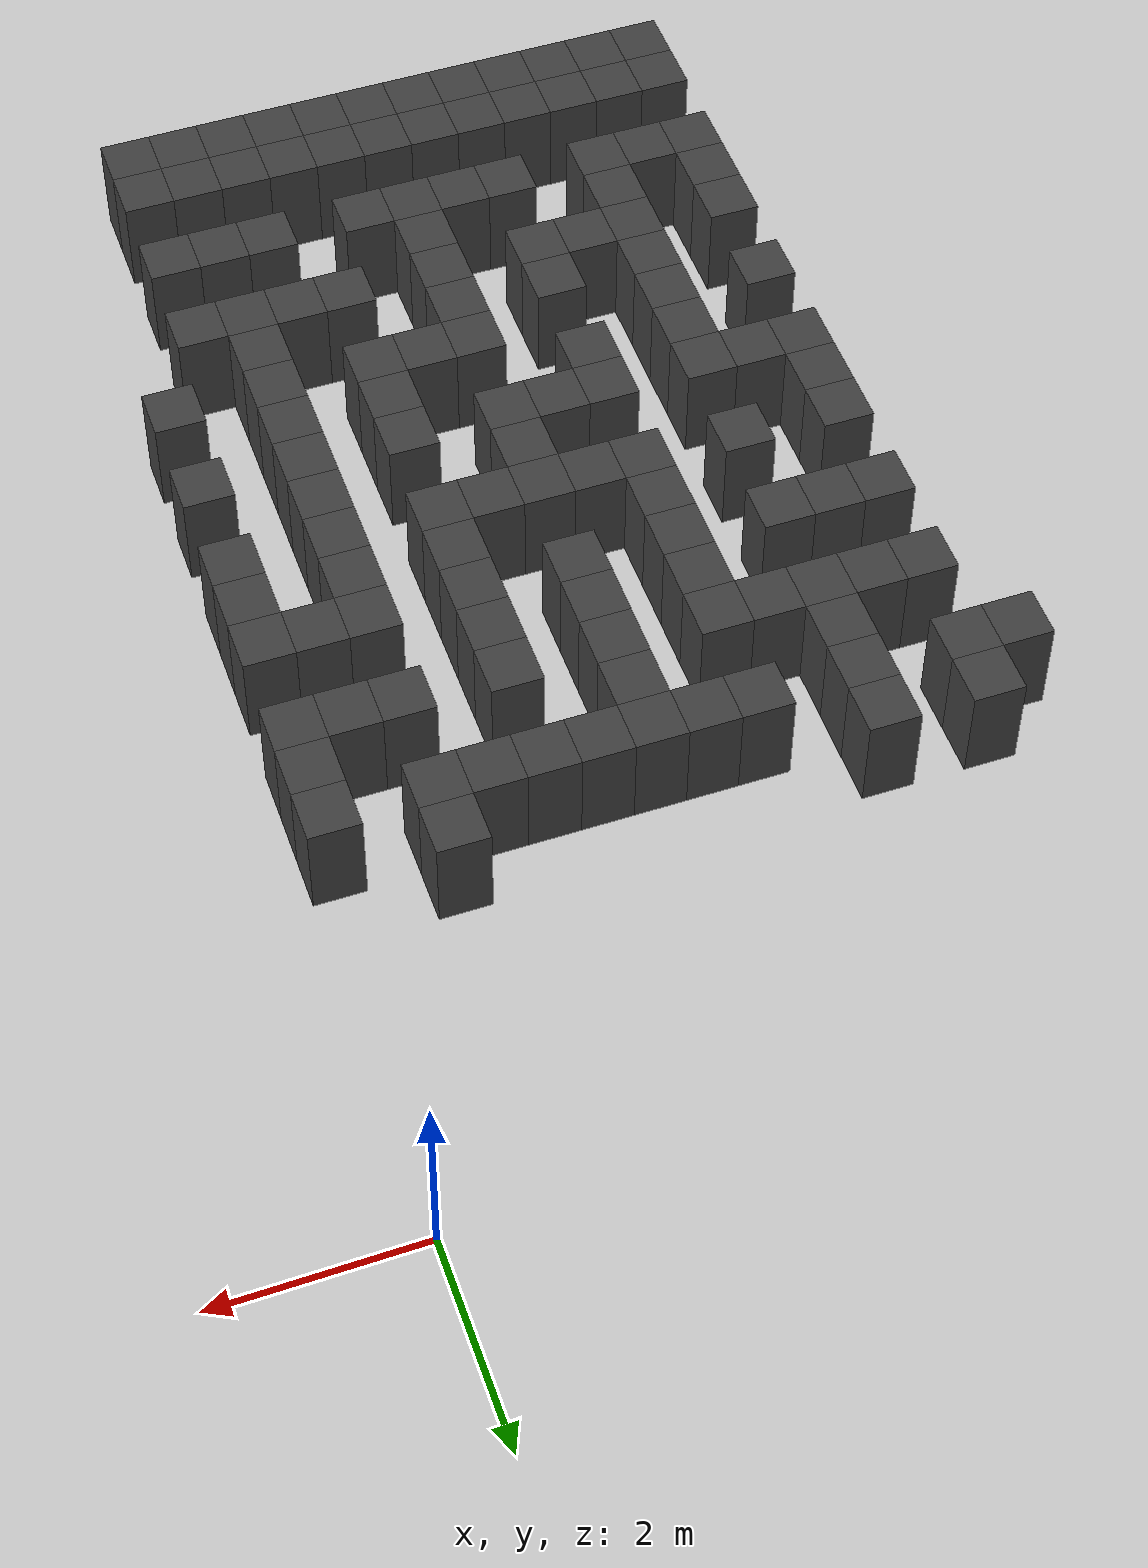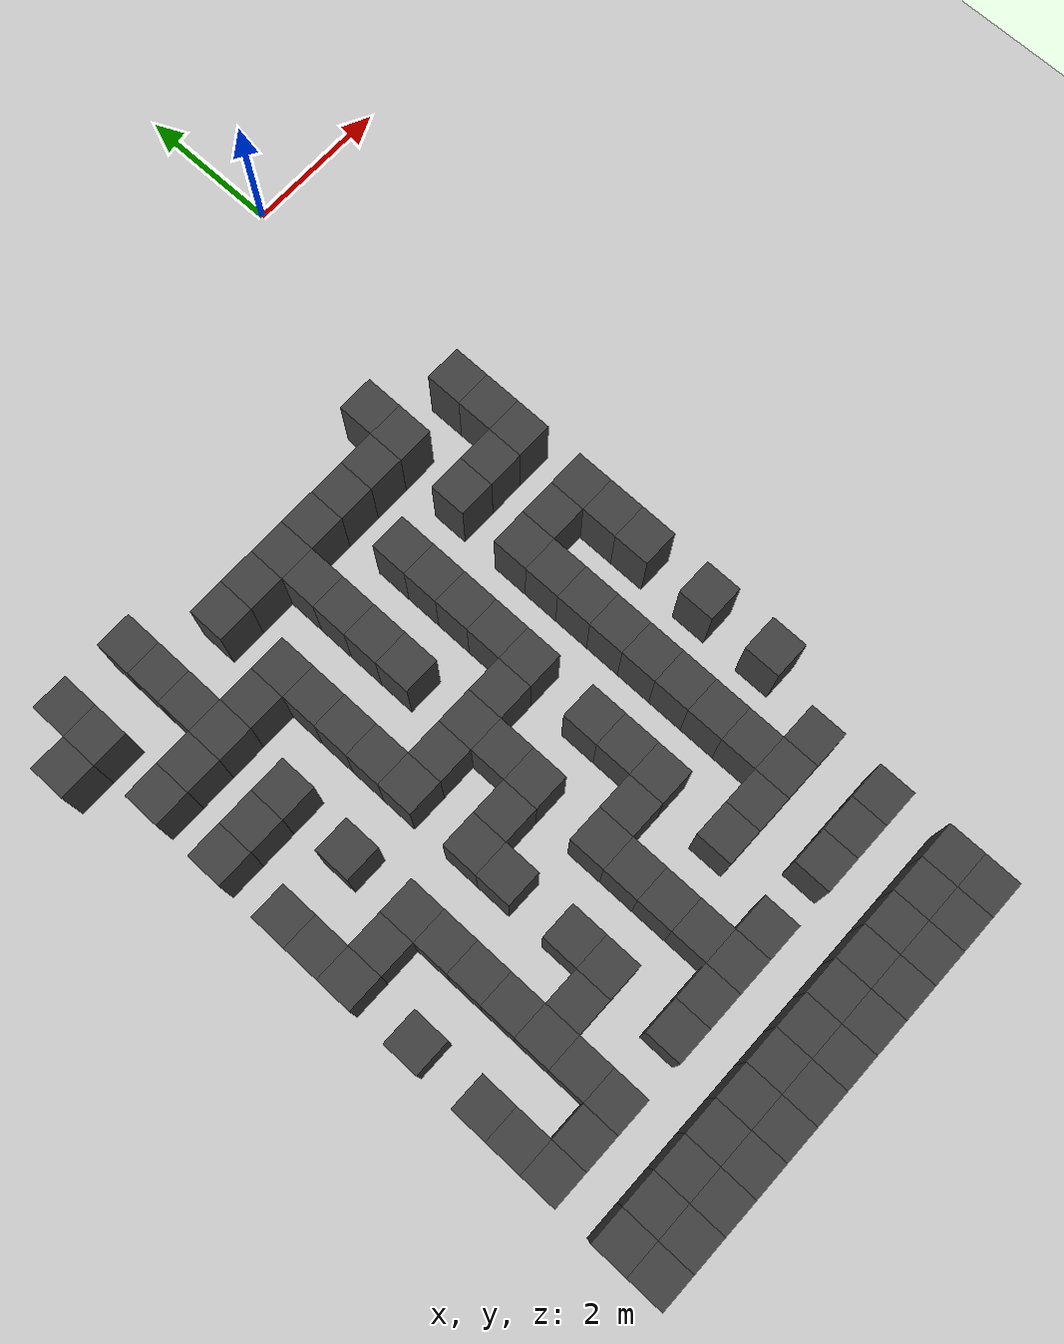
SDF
<sdf version="1.7">
 <world name="map_16884">
  <model name="ground_plane">
   <static>true</static>
   <link name="link">
    <collision name="collision">
     <geometry><plane><normal>0 0 1</normal><size>200 200</size></plane></geometry>
    </collision>
    <visual name="visual">
     <geometry><plane><normal>0 0 1</normal><size>200 200</size></plane></geometry>
     <material><ambient>0.8 0.8 0.8 1</ambient><diffuse>0.8 0.8 0.8 1</diffuse></material>
    </visual>
   </link>
  </model>
  <model name="maze_environment">
   <static>true</static>
   <link name="wall_764">
    <pose>-6.250 -3.250 0.500 0 0 0</pose>
    <collision name="col"><geometry><box><size>0.5 0.5 1.0</size></box></geometry></collision>
    <visual name="vis">
     <geometry><box><size>0.5 0.5 1.0</size></box></geometry>
     <material><ambient>0.15 0.15 0.15 1</ambient><diffuse>0.25 0.25 0.25 1</diffuse></material>
    </visual>
   </link>
   <link name="wall_765">
    <pose>-5.250 -3.250 0.500 0 0 0</pose>
    <collision name="col"><geometry><box><size>0.5 0.5 1.0</size></box></geometry></collision>
    <visual name="vis">
     <geometry><box><size>0.5 0.5 1.0</size></box></geometry>
     <material><ambient>0.15 0.15 0.15 1</ambient><diffuse>0.25 0.25 0.25 1</diffuse></material>
    </visual>
   </link>
   <link name="wall_766">
    <pose>-1.250 -3.250 0.500 0 0 0</pose>
    <collision name="col"><geometry><box><size>0.5 0.5 1.0</size></box></geometry></collision>
    <visual name="vis">
     <geometry><box><size>0.5 0.5 1.0</size></box></geometry>
     <material><ambient>0.15 0.15 0.15 1</ambient><diffuse>0.25 0.25 0.25 1</diffuse></material>
    </visual>
   </link>
   <link name="wall_781">
    <pose>-6.750 -3.750 0.500 0 0 0</pose>
    <collision name="col"><geometry><box><size>0.5 0.5 1.0</size></box></geometry></collision>
    <visual name="vis">
     <geometry><box><size>0.5 0.5 1.0</size></box></geometry>
     <material><ambient>0.15 0.15 0.15 1</ambient><diffuse>0.25 0.25 0.25 1</diffuse></material>
    </visual>
   </link>
   <link name="wall_782">
    <pose>-6.250 -3.750 0.500 0 0 0</pose>
    <collision name="col"><geometry><box><size>0.5 0.5 1.0</size></box></geometry></collision>
    <visual name="vis">
     <geometry><box><size>0.5 0.5 1.0</size></box></geometry>
     <material><ambient>0.15 0.15 0.15 1</ambient><diffuse>0.25 0.25 0.25 1</diffuse></material>
    </visual>
   </link>
   <link name="wall_783">
    <pose>-5.250 -3.750 0.500 0 0 0</pose>
    <collision name="col"><geometry><box><size>0.5 0.5 1.0</size></box></geometry></collision>
    <visual name="vis">
     <geometry><box><size>0.5 0.5 1.0</size></box></geometry>
     <material><ambient>0.15 0.15 0.15 1</ambient><diffuse>0.25 0.25 0.25 1</diffuse></material>
    </visual>
   </link>
   <link name="wall_784">
    <pose>-4.250 -3.750 0.500 0 0 0</pose>
    <collision name="col"><geometry><box><size>0.5 0.5 1.0</size></box></geometry></collision>
    <visual name="vis">
     <geometry><box><size>0.5 0.5 1.0</size></box></geometry>
     <material><ambient>0.15 0.15 0.15 1</ambient><diffuse>0.25 0.25 0.25 1</diffuse></material>
    </visual>
   </link>
   <link name="wall_785">
    <pose>-3.750 -3.750 0.500 0 0 0</pose>
    <collision name="col"><geometry><box><size>0.5 0.5 1.0</size></box></geometry></collision>
    <visual name="vis">
     <geometry><box><size>0.5 0.5 1.0</size></box></geometry>
     <material><ambient>0.15 0.15 0.15 1</ambient><diffuse>0.25 0.25 0.25 1</diffuse></material>
    </visual>
   </link>
   <link name="wall_786">
    <pose>-3.250 -3.750 0.500 0 0 0</pose>
    <collision name="col"><geometry><box><size>0.5 0.5 1.0</size></box></geometry></collision>
    <visual name="vis">
     <geometry><box><size>0.5 0.5 1.0</size></box></geometry>
     <material><ambient>0.15 0.15 0.15 1</ambient><diffuse>0.25 0.25 0.25 1</diffuse></material>
    </visual>
   </link>
   <link name="wall_787">
    <pose>-2.750 -3.750 0.500 0 0 0</pose>
    <collision name="col"><geometry><box><size>0.5 0.5 1.0</size></box></geometry></collision>
    <visual name="vis">
     <geometry><box><size>0.5 0.5 1.0</size></box></geometry>
     <material><ambient>0.15 0.15 0.15 1</ambient><diffuse>0.25 0.25 0.25 1</diffuse></material>
    </visual>
   </link>
   <link name="wall_788">
    <pose>-2.250 -3.750 0.500 0 0 0</pose>
    <collision name="col"><geometry><box><size>0.5 0.5 1.0</size></box></geometry></collision>
    <visual name="vis">
     <geometry><box><size>0.5 0.5 1.0</size></box></geometry>
     <material><ambient>0.15 0.15 0.15 1</ambient><diffuse>0.25 0.25 0.25 1</diffuse></material>
    </visual>
   </link>
   <link name="wall_789">
    <pose>-1.750 -3.750 0.500 0 0 0</pose>
    <collision name="col"><geometry><box><size>0.5 0.5 1.0</size></box></geometry></collision>
    <visual name="vis">
     <geometry><box><size>0.5 0.5 1.0</size></box></geometry>
     <material><ambient>0.15 0.15 0.15 1</ambient><diffuse>0.25 0.25 0.25 1</diffuse></material>
    </visual>
   </link>
   <link name="wall_790">
    <pose>-1.250 -3.750 0.500 0 0 0</pose>
    <collision name="col"><geometry><box><size>0.5 0.5 1.0</size></box></geometry></collision>
    <visual name="vis">
     <geometry><box><size>0.5 0.5 1.0</size></box></geometry>
     <material><ambient>0.15 0.15 0.15 1</ambient><diffuse>0.25 0.25 0.25 1</diffuse></material>
    </visual>
   </link>
   <link name="wall_791">
    <pose>-0.250 -3.750 0.500 0 0 0</pose>
    <collision name="col"><geometry><box><size>0.5 0.5 1.0</size></box></geometry></collision>
    <visual name="vis">
     <geometry><box><size>0.5 0.5 1.0</size></box></geometry>
     <material><ambient>0.15 0.15 0.15 1</ambient><diffuse>0.25 0.25 0.25 1</diffuse></material>
    </visual>
   </link>
   <link name="wall_810">
    <pose>-5.250 -4.250 0.500 0 0 0</pose>
    <collision name="col"><geometry><box><size>0.5 0.5 1.0</size></box></geometry></collision>
    <visual name="vis">
     <geometry><box><size>0.5 0.5 1.0</size></box></geometry>
     <material><ambient>0.15 0.15 0.15 1</ambient><diffuse>0.25 0.25 0.25 1</diffuse></material>
    </visual>
   </link>
   <link name="wall_811">
    <pose>-3.250 -4.250 0.500 0 0 0</pose>
    <collision name="col"><geometry><box><size>0.5 0.5 1.0</size></box></geometry></collision>
    <visual name="vis">
     <geometry><box><size>0.5 0.5 1.0</size></box></geometry>
     <material><ambient>0.15 0.15 0.15 1</ambient><diffuse>0.25 0.25 0.25 1</diffuse></material>
    </visual>
   </link>
   <link name="wall_812">
    <pose>-0.250 -4.250 0.500 0 0 0</pose>
    <collision name="col"><geometry><box><size>0.5 0.5 1.0</size></box></geometry></collision>
    <visual name="vis">
     <geometry><box><size>0.5 0.5 1.0</size></box></geometry>
     <material><ambient>0.15 0.15 0.15 1</ambient><diffuse>0.25 0.25 0.25 1</diffuse></material>
    </visual>
   </link>
   <link name="wall_830">
    <pose>-6.250 -4.750 0.500 0 0 0</pose>
    <collision name="col"><geometry><box><size>0.5 0.5 1.0</size></box></geometry></collision>
    <visual name="vis">
     <geometry><box><size>0.5 0.5 1.0</size></box></geometry>
     <material><ambient>0.15 0.15 0.15 1</ambient><diffuse>0.25 0.25 0.25 1</diffuse></material>
    </visual>
   </link>
   <link name="wall_831">
    <pose>-5.750 -4.750 0.500 0 0 0</pose>
    <collision name="col"><geometry><box><size>0.5 0.5 1.0</size></box></geometry></collision>
    <visual name="vis">
     <geometry><box><size>0.5 0.5 1.0</size></box></geometry>
     <material><ambient>0.15 0.15 0.15 1</ambient><diffuse>0.25 0.25 0.25 1</diffuse></material>
    </visual>
   </link>
   <link name="wall_832">
    <pose>-5.250 -4.750 0.500 0 0 0</pose>
    <collision name="col"><geometry><box><size>0.5 0.5 1.0</size></box></geometry></collision>
    <visual name="vis">
     <geometry><box><size>0.5 0.5 1.0</size></box></geometry>
     <material><ambient>0.15 0.15 0.15 1</ambient><diffuse>0.25 0.25 0.25 1</diffuse></material>
    </visual>
   </link>
   <link name="wall_833">
    <pose>-4.750 -4.750 0.500 0 0 0</pose>
    <collision name="col"><geometry><box><size>0.5 0.5 1.0</size></box></geometry></collision>
    <visual name="vis">
     <geometry><box><size>0.5 0.5 1.0</size></box></geometry>
     <material><ambient>0.15 0.15 0.15 1</ambient><diffuse>0.25 0.25 0.25 1</diffuse></material>
    </visual>
   </link>
   <link name="wall_834">
    <pose>-4.250 -4.750 0.500 0 0 0</pose>
    <collision name="col"><geometry><box><size>0.5 0.5 1.0</size></box></geometry></collision>
    <visual name="vis">
     <geometry><box><size>0.5 0.5 1.0</size></box></geometry>
     <material><ambient>0.15 0.15 0.15 1</ambient><diffuse>0.25 0.25 0.25 1</diffuse></material>
    </visual>
   </link>
   <link name="wall_835">
    <pose>-3.250 -4.750 0.500 0 0 0</pose>
    <collision name="col"><geometry><box><size>0.5 0.5 1.0</size></box></geometry></collision>
    <visual name="vis">
     <geometry><box><size>0.5 0.5 1.0</size></box></geometry>
     <material><ambient>0.15 0.15 0.15 1</ambient><diffuse>0.25 0.25 0.25 1</diffuse></material>
    </visual>
   </link>
   <link name="wall_836">
    <pose>-2.250 -4.750 0.500 0 0 0</pose>
    <collision name="col"><geometry><box><size>0.5 0.5 1.0</size></box></geometry></collision>
    <visual name="vis">
     <geometry><box><size>0.5 0.5 1.0</size></box></geometry>
     <material><ambient>0.15 0.15 0.15 1</ambient><diffuse>0.25 0.25 0.25 1</diffuse></material>
    </visual>
   </link>
   <link name="wall_837">
    <pose>-1.250 -4.750 0.500 0 0 0</pose>
    <collision name="col"><geometry><box><size>0.5 0.5 1.0</size></box></geometry></collision>
    <visual name="vis">
     <geometry><box><size>0.5 0.5 1.0</size></box></geometry>
     <material><ambient>0.15 0.15 0.15 1</ambient><diffuse>0.25 0.25 0.25 1</diffuse></material>
    </visual>
   </link>
   <link name="wall_838">
    <pose>-0.750 -4.750 0.500 0 0 0</pose>
    <collision name="col"><geometry><box><size>0.5 0.5 1.0</size></box></geometry></collision>
    <visual name="vis">
     <geometry><box><size>0.5 0.5 1.0</size></box></geometry>
     <material><ambient>0.15 0.15 0.15 1</ambient><diffuse>0.25 0.25 0.25 1</diffuse></material>
    </visual>
   </link>
   <link name="wall_839">
    <pose>-0.250 -4.750 0.500 0 0 0</pose>
    <collision name="col"><geometry><box><size>0.5 0.5 1.0</size></box></geometry></collision>
    <visual name="vis">
     <geometry><box><size>0.5 0.5 1.0</size></box></geometry>
     <material><ambient>0.15 0.15 0.15 1</ambient><diffuse>0.25 0.25 0.25 1</diffuse></material>
    </visual>
   </link>
   <link name="wall_862">
    <pose>-4.250 -5.250 0.500 0 0 0</pose>
    <collision name="col"><geometry><box><size>0.5 0.5 1.0</size></box></geometry></collision>
    <visual name="vis">
     <geometry><box><size>0.5 0.5 1.0</size></box></geometry>
     <material><ambient>0.15 0.15 0.15 1</ambient><diffuse>0.25 0.25 0.25 1</diffuse></material>
    </visual>
   </link>
   <link name="wall_863">
    <pose>-3.250 -5.250 0.500 0 0 0</pose>
    <collision name="col"><geometry><box><size>0.5 0.5 1.0</size></box></geometry></collision>
    <visual name="vis">
     <geometry><box><size>0.5 0.5 1.0</size></box></geometry>
     <material><ambient>0.15 0.15 0.15 1</ambient><diffuse>0.25 0.25 0.25 1</diffuse></material>
    </visual>
   </link>
   <link name="wall_864">
    <pose>-2.250 -5.250 0.500 0 0 0</pose>
    <collision name="col"><geometry><box><size>0.5 0.5 1.0</size></box></geometry></collision>
    <visual name="vis">
     <geometry><box><size>0.5 0.5 1.0</size></box></geometry>
     <material><ambient>0.15 0.15 0.15 1</ambient><diffuse>0.25 0.25 0.25 1</diffuse></material>
    </visual>
   </link>
   <link name="wall_880">
    <pose>-6.250 -5.750 0.500 0 0 0</pose>
    <collision name="col"><geometry><box><size>0.5 0.5 1.0</size></box></geometry></collision>
    <visual name="vis">
     <geometry><box><size>0.5 0.5 1.0</size></box></geometry>
     <material><ambient>0.15 0.15 0.15 1</ambient><diffuse>0.25 0.25 0.25 1</diffuse></material>
    </visual>
   </link>
   <link name="wall_881">
    <pose>-5.750 -5.750 0.500 0 0 0</pose>
    <collision name="col"><geometry><box><size>0.5 0.5 1.0</size></box></geometry></collision>
    <visual name="vis">
     <geometry><box><size>0.5 0.5 1.0</size></box></geometry>
     <material><ambient>0.15 0.15 0.15 1</ambient><diffuse>0.25 0.25 0.25 1</diffuse></material>
    </visual>
   </link>
   <link name="wall_882">
    <pose>-5.250 -5.750 0.500 0 0 0</pose>
    <collision name="col"><geometry><box><size>0.5 0.5 1.0</size></box></geometry></collision>
    <visual name="vis">
     <geometry><box><size>0.5 0.5 1.0</size></box></geometry>
     <material><ambient>0.15 0.15 0.15 1</ambient><diffuse>0.25 0.25 0.25 1</diffuse></material>
    </visual>
   </link>
   <link name="wall_883">
    <pose>-4.250 -5.750 0.500 0 0 0</pose>
    <collision name="col"><geometry><box><size>0.5 0.5 1.0</size></box></geometry></collision>
    <visual name="vis">
     <geometry><box><size>0.5 0.5 1.0</size></box></geometry>
     <material><ambient>0.15 0.15 0.15 1</ambient><diffuse>0.25 0.25 0.25 1</diffuse></material>
    </visual>
   </link>
   <link name="wall_884">
    <pose>-3.250 -5.750 0.500 0 0 0</pose>
    <collision name="col"><geometry><box><size>0.5 0.5 1.0</size></box></geometry></collision>
    <visual name="vis">
     <geometry><box><size>0.5 0.5 1.0</size></box></geometry>
     <material><ambient>0.15 0.15 0.15 1</ambient><diffuse>0.25 0.25 0.25 1</diffuse></material>
    </visual>
   </link>
   <link name="wall_885">
    <pose>-2.250 -5.750 0.500 0 0 0</pose>
    <collision name="col"><geometry><box><size>0.5 0.5 1.0</size></box></geometry></collision>
    <visual name="vis">
     <geometry><box><size>0.5 0.5 1.0</size></box></geometry>
     <material><ambient>0.15 0.15 0.15 1</ambient><diffuse>0.25 0.25 0.25 1</diffuse></material>
    </visual>
   </link>
   <link name="wall_886">
    <pose>-1.250 -5.750 0.500 0 0 0</pose>
    <collision name="col"><geometry><box><size>0.5 0.5 1.0</size></box></geometry></collision>
    <visual name="vis">
     <geometry><box><size>0.5 0.5 1.0</size></box></geometry>
     <material><ambient>0.15 0.15 0.15 1</ambient><diffuse>0.25 0.25 0.25 1</diffuse></material>
    </visual>
   </link>
   <link name="wall_887">
    <pose>-0.750 -5.750 0.500 0 0 0</pose>
    <collision name="col"><geometry><box><size>0.5 0.5 1.0</size></box></geometry></collision>
    <visual name="vis">
     <geometry><box><size>0.5 0.5 1.0</size></box></geometry>
     <material><ambient>0.15 0.15 0.15 1</ambient><diffuse>0.25 0.25 0.25 1</diffuse></material>
    </visual>
   </link>
   <link name="wall_888">
    <pose>-0.250 -5.750 0.500 0 0 0</pose>
    <collision name="col"><geometry><box><size>0.5 0.5 1.0</size></box></geometry></collision>
    <visual name="vis">
     <geometry><box><size>0.5 0.5 1.0</size></box></geometry>
     <material><ambient>0.15 0.15 0.15 1</ambient><diffuse>0.25 0.25 0.25 1</diffuse></material>
    </visual>
   </link>
   <link name="wall_908">
    <pose>-4.250 -6.250 0.500 0 0 0</pose>
    <collision name="col"><geometry><box><size>0.5 0.5 1.0</size></box></geometry></collision>
    <visual name="vis">
     <geometry><box><size>0.5 0.5 1.0</size></box></geometry>
     <material><ambient>0.15 0.15 0.15 1</ambient><diffuse>0.25 0.25 0.25 1</diffuse></material>
    </visual>
   </link>
   <link name="wall_909">
    <pose>-2.250 -6.250 0.500 0 0 0</pose>
    <collision name="col"><geometry><box><size>0.5 0.5 1.0</size></box></geometry></collision>
    <visual name="vis">
     <geometry><box><size>0.5 0.5 1.0</size></box></geometry>
     <material><ambient>0.15 0.15 0.15 1</ambient><diffuse>0.25 0.25 0.25 1</diffuse></material>
    </visual>
   </link>
   <link name="wall_910">
    <pose>-1.250 -6.250 0.500 0 0 0</pose>
    <collision name="col"><geometry><box><size>0.5 0.5 1.0</size></box></geometry></collision>
    <visual name="vis">
     <geometry><box><size>0.5 0.5 1.0</size></box></geometry>
     <material><ambient>0.15 0.15 0.15 1</ambient><diffuse>0.25 0.25 0.25 1</diffuse></material>
    </visual>
   </link>
   <link name="wall_911">
    <pose>-0.250 -6.250 0.500 0 0 0</pose>
    <collision name="col"><geometry><box><size>0.5 0.5 1.0</size></box></geometry></collision>
    <visual name="vis">
     <geometry><box><size>0.5 0.5 1.0</size></box></geometry>
     <material><ambient>0.15 0.15 0.15 1</ambient><diffuse>0.25 0.25 0.25 1</diffuse></material>
    </visual>
   </link>
   <link name="wall_928">
    <pose>-6.250 -6.750 0.500 0 0 0</pose>
    <collision name="col"><geometry><box><size>0.5 0.5 1.0</size></box></geometry></collision>
    <visual name="vis">
     <geometry><box><size>0.5 0.5 1.0</size></box></geometry>
     <material><ambient>0.15 0.15 0.15 1</ambient><diffuse>0.25 0.25 0.25 1</diffuse></material>
    </visual>
   </link>
   <link name="wall_929">
    <pose>-5.250 -6.750 0.500 0 0 0</pose>
    <collision name="col"><geometry><box><size>0.5 0.5 1.0</size></box></geometry></collision>
    <visual name="vis">
     <geometry><box><size>0.5 0.5 1.0</size></box></geometry>
     <material><ambient>0.15 0.15 0.15 1</ambient><diffuse>0.25 0.25 0.25 1</diffuse></material>
    </visual>
   </link>
   <link name="wall_930">
    <pose>-4.250 -6.750 0.500 0 0 0</pose>
    <collision name="col"><geometry><box><size>0.5 0.5 1.0</size></box></geometry></collision>
    <visual name="vis">
     <geometry><box><size>0.5 0.5 1.0</size></box></geometry>
     <material><ambient>0.15 0.15 0.15 1</ambient><diffuse>0.25 0.25 0.25 1</diffuse></material>
    </visual>
   </link>
   <link name="wall_931">
    <pose>-3.750 -6.750 0.500 0 0 0</pose>
    <collision name="col"><geometry><box><size>0.5 0.5 1.0</size></box></geometry></collision>
    <visual name="vis">
     <geometry><box><size>0.5 0.5 1.0</size></box></geometry>
     <material><ambient>0.15 0.15 0.15 1</ambient><diffuse>0.25 0.25 0.25 1</diffuse></material>
    </visual>
   </link>
   <link name="wall_932">
    <pose>-3.250 -6.750 0.500 0 0 0</pose>
    <collision name="col"><geometry><box><size>0.5 0.5 1.0</size></box></geometry></collision>
    <visual name="vis">
     <geometry><box><size>0.5 0.5 1.0</size></box></geometry>
     <material><ambient>0.15 0.15 0.15 1</ambient><diffuse>0.25 0.25 0.25 1</diffuse></material>
    </visual>
   </link>
   <link name="wall_933">
    <pose>-2.750 -6.750 0.500 0 0 0</pose>
    <collision name="col"><geometry><box><size>0.5 0.5 1.0</size></box></geometry></collision>
    <visual name="vis">
     <geometry><box><size>0.5 0.5 1.0</size></box></geometry>
     <material><ambient>0.15 0.15 0.15 1</ambient><diffuse>0.25 0.25 0.25 1</diffuse></material>
    </visual>
   </link>
   <link name="wall_934">
    <pose>-2.250 -6.750 0.500 0 0 0</pose>
    <collision name="col"><geometry><box><size>0.5 0.5 1.0</size></box></geometry></collision>
    <visual name="vis">
     <geometry><box><size>0.5 0.5 1.0</size></box></geometry>
     <material><ambient>0.15 0.15 0.15 1</ambient><diffuse>0.25 0.25 0.25 1</diffuse></material>
    </visual>
   </link>
   <link name="wall_935">
    <pose>-1.250 -6.750 0.500 0 0 0</pose>
    <collision name="col"><geometry><box><size>0.5 0.5 1.0</size></box></geometry></collision>
    <visual name="vis">
     <geometry><box><size>0.5 0.5 1.0</size></box></geometry>
     <material><ambient>0.15 0.15 0.15 1</ambient><diffuse>0.25 0.25 0.25 1</diffuse></material>
    </visual>
   </link>
   <link name="wall_936">
    <pose>-0.250 -6.750 0.500 0 0 0</pose>
    <collision name="col"><geometry><box><size>0.5 0.5 1.0</size></box></geometry></collision>
    <visual name="vis">
     <geometry><box><size>0.5 0.5 1.0</size></box></geometry>
     <material><ambient>0.15 0.15 0.15 1</ambient><diffuse>0.25 0.25 0.25 1</diffuse></material>
    </visual>
   </link>
   <link name="wall_956">
    <pose>-6.250 -7.250 0.500 0 0 0</pose>
    <collision name="col"><geometry><box><size>0.5 0.5 1.0</size></box></geometry></collision>
    <visual name="vis">
     <geometry><box><size>0.5 0.5 1.0</size></box></geometry>
     <material><ambient>0.15 0.15 0.15 1</ambient><diffuse>0.25 0.25 0.25 1</diffuse></material>
    </visual>
   </link>
   <link name="wall_957">
    <pose>-3.250 -7.250 0.500 0 0 0</pose>
    <collision name="col"><geometry><box><size>0.5 0.5 1.0</size></box></geometry></collision>
    <visual name="vis">
     <geometry><box><size>0.5 0.5 1.0</size></box></geometry>
     <material><ambient>0.15 0.15 0.15 1</ambient><diffuse>0.25 0.25 0.25 1</diffuse></material>
    </visual>
   </link>
   <link name="wall_958">
    <pose>-1.250 -7.250 0.500 0 0 0</pose>
    <collision name="col"><geometry><box><size>0.5 0.5 1.0</size></box></geometry></collision>
    <visual name="vis">
     <geometry><box><size>0.5 0.5 1.0</size></box></geometry>
     <material><ambient>0.15 0.15 0.15 1</ambient><diffuse>0.25 0.25 0.25 1</diffuse></material>
    </visual>
   </link>
   <link name="wall_976">
    <pose>-6.250 -7.750 0.500 0 0 0</pose>
    <collision name="col"><geometry><box><size>0.5 0.5 1.0</size></box></geometry></collision>
    <visual name="vis">
     <geometry><box><size>0.5 0.5 1.0</size></box></geometry>
     <material><ambient>0.15 0.15 0.15 1</ambient><diffuse>0.25 0.25 0.25 1</diffuse></material>
    </visual>
   </link>
   <link name="wall_977">
    <pose>-5.750 -7.750 0.500 0 0 0</pose>
    <collision name="col"><geometry><box><size>0.5 0.5 1.0</size></box></geometry></collision>
    <visual name="vis">
     <geometry><box><size>0.5 0.5 1.0</size></box></geometry>
     <material><ambient>0.15 0.15 0.15 1</ambient><diffuse>0.25 0.25 0.25 1</diffuse></material>
    </visual>
   </link>
   <link name="wall_978">
    <pose>-5.250 -7.750 0.500 0 0 0</pose>
    <collision name="col"><geometry><box><size>0.5 0.5 1.0</size></box></geometry></collision>
    <visual name="vis">
     <geometry><box><size>0.5 0.5 1.0</size></box></geometry>
     <material><ambient>0.15 0.15 0.15 1</ambient><diffuse>0.25 0.25 0.25 1</diffuse></material>
    </visual>
   </link>
   <link name="wall_979">
    <pose>-4.250 -7.750 0.500 0 0 0</pose>
    <collision name="col"><geometry><box><size>0.5 0.5 1.0</size></box></geometry></collision>
    <visual name="vis">
     <geometry><box><size>0.5 0.5 1.0</size></box></geometry>
     <material><ambient>0.15 0.15 0.15 1</ambient><diffuse>0.25 0.25 0.25 1</diffuse></material>
    </visual>
   </link>
   <link name="wall_980">
    <pose>-3.750 -7.750 0.500 0 0 0</pose>
    <collision name="col"><geometry><box><size>0.5 0.5 1.0</size></box></geometry></collision>
    <visual name="vis">
     <geometry><box><size>0.5 0.5 1.0</size></box></geometry>
     <material><ambient>0.15 0.15 0.15 1</ambient><diffuse>0.25 0.25 0.25 1</diffuse></material>
    </visual>
   </link>
   <link name="wall_981">
    <pose>-3.250 -7.750 0.500 0 0 0</pose>
    <collision name="col"><geometry><box><size>0.5 0.5 1.0</size></box></geometry></collision>
    <visual name="vis">
     <geometry><box><size>0.5 0.5 1.0</size></box></geometry>
     <material><ambient>0.15 0.15 0.15 1</ambient><diffuse>0.25 0.25 0.25 1</diffuse></material>
    </visual>
   </link>
   <link name="wall_982">
    <pose>-2.250 -7.750 0.500 0 0 0</pose>
    <collision name="col"><geometry><box><size>0.5 0.5 1.0</size></box></geometry></collision>
    <visual name="vis">
     <geometry><box><size>0.5 0.5 1.0</size></box></geometry>
     <material><ambient>0.15 0.15 0.15 1</ambient><diffuse>0.25 0.25 0.25 1</diffuse></material>
    </visual>
   </link>
   <link name="wall_983">
    <pose>-1.250 -7.750 0.500 0 0 0</pose>
    <collision name="col"><geometry><box><size>0.5 0.5 1.0</size></box></geometry></collision>
    <visual name="vis">
     <geometry><box><size>0.5 0.5 1.0</size></box></geometry>
     <material><ambient>0.15 0.15 0.15 1</ambient><diffuse>0.25 0.25 0.25 1</diffuse></material>
    </visual>
   </link>
   <link name="wall_984">
    <pose>-0.250 -7.750 0.500 0 0 0</pose>
    <collision name="col"><geometry><box><size>0.5 0.5 1.0</size></box></geometry></collision>
    <visual name="vis">
     <geometry><box><size>0.5 0.5 1.0</size></box></geometry>
     <material><ambient>0.15 0.15 0.15 1</ambient><diffuse>0.25 0.25 0.25 1</diffuse></material>
    </visual>
   </link>
   <link name="wall_1006">
    <pose>-5.250 -8.250 0.500 0 0 0</pose>
    <collision name="col"><geometry><box><size>0.5 0.5 1.0</size></box></geometry></collision>
    <visual name="vis">
     <geometry><box><size>0.5 0.5 1.0</size></box></geometry>
     <material><ambient>0.15 0.15 0.15 1</ambient><diffuse>0.25 0.25 0.25 1</diffuse></material>
    </visual>
   </link>
   <link name="wall_1007">
    <pose>-4.250 -8.250 0.500 0 0 0</pose>
    <collision name="col"><geometry><box><size>0.5 0.5 1.0</size></box></geometry></collision>
    <visual name="vis">
     <geometry><box><size>0.5 0.5 1.0</size></box></geometry>
     <material><ambient>0.15 0.15 0.15 1</ambient><diffuse>0.25 0.25 0.25 1</diffuse></material>
    </visual>
   </link>
   <link name="wall_1008">
    <pose>-2.250 -8.250 0.500 0 0 0</pose>
    <collision name="col"><geometry><box><size>0.5 0.5 1.0</size></box></geometry></collision>
    <visual name="vis">
     <geometry><box><size>0.5 0.5 1.0</size></box></geometry>
     <material><ambient>0.15 0.15 0.15 1</ambient><diffuse>0.25 0.25 0.25 1</diffuse></material>
    </visual>
   </link>
   <link name="wall_1009">
    <pose>-1.250 -8.250 0.500 0 0 0</pose>
    <collision name="col"><geometry><box><size>0.5 0.5 1.0</size></box></geometry></collision>
    <visual name="vis">
     <geometry><box><size>0.5 0.5 1.0</size></box></geometry>
     <material><ambient>0.15 0.15 0.15 1</ambient><diffuse>0.25 0.25 0.25 1</diffuse></material>
    </visual>
   </link>
   <link name="wall_1023">
    <pose>-6.250 -8.750 0.500 0 0 0</pose>
    <collision name="col"><geometry><box><size>0.5 0.5 1.0</size></box></geometry></collision>
    <visual name="vis">
     <geometry><box><size>0.5 0.5 1.0</size></box></geometry>
     <material><ambient>0.15 0.15 0.15 1</ambient><diffuse>0.25 0.25 0.25 1</diffuse></material>
    </visual>
   </link>
   <link name="wall_1024">
    <pose>-5.250 -8.750 0.500 0 0 0</pose>
    <collision name="col"><geometry><box><size>0.5 0.5 1.0</size></box></geometry></collision>
    <visual name="vis">
     <geometry><box><size>0.5 0.5 1.0</size></box></geometry>
     <material><ambient>0.15 0.15 0.15 1</ambient><diffuse>0.25 0.25 0.25 1</diffuse></material>
    </visual>
   </link>
   <link name="wall_1025">
    <pose>-3.250 -8.750 0.500 0 0 0</pose>
    <collision name="col"><geometry><box><size>0.5 0.5 1.0</size></box></geometry></collision>
    <visual name="vis">
     <geometry><box><size>0.5 0.5 1.0</size></box></geometry>
     <material><ambient>0.15 0.15 0.15 1</ambient><diffuse>0.25 0.25 0.25 1</diffuse></material>
    </visual>
   </link>
   <link name="wall_1026">
    <pose>-2.750 -8.750 0.500 0 0 0</pose>
    <collision name="col"><geometry><box><size>0.5 0.5 1.0</size></box></geometry></collision>
    <visual name="vis">
     <geometry><box><size>0.5 0.5 1.0</size></box></geometry>
     <material><ambient>0.15 0.15 0.15 1</ambient><diffuse>0.25 0.25 0.25 1</diffuse></material>
    </visual>
   </link>
   <link name="wall_1027">
    <pose>-2.250 -8.750 0.500 0 0 0</pose>
    <collision name="col"><geometry><box><size>0.5 0.5 1.0</size></box></geometry></collision>
    <visual name="vis">
     <geometry><box><size>0.5 0.5 1.0</size></box></geometry>
     <material><ambient>0.15 0.15 0.15 1</ambient><diffuse>0.25 0.25 0.25 1</diffuse></material>
    </visual>
   </link>
   <link name="wall_1028">
    <pose>-1.250 -8.750 0.500 0 0 0</pose>
    <collision name="col"><geometry><box><size>0.5 0.5 1.0</size></box></geometry></collision>
    <visual name="vis">
     <geometry><box><size>0.5 0.5 1.0</size></box></geometry>
     <material><ambient>0.15 0.15 0.15 1</ambient><diffuse>0.25 0.25 0.25 1</diffuse></material>
    </visual>
   </link>
   <link name="wall_1029">
    <pose>-0.250 -8.750 0.500 0 0 0</pose>
    <collision name="col"><geometry><box><size>0.5 0.5 1.0</size></box></geometry></collision>
    <visual name="vis">
     <geometry><box><size>0.5 0.5 1.0</size></box></geometry>
     <material><ambient>0.15 0.15 0.15 1</ambient><diffuse>0.25 0.25 0.25 1</diffuse></material>
    </visual>
   </link>
   <link name="wall_1050">
    <pose>-5.250 -9.250 0.500 0 0 0</pose>
    <collision name="col"><geometry><box><size>0.5 0.5 1.0</size></box></geometry></collision>
    <visual name="vis">
     <geometry><box><size>0.5 0.5 1.0</size></box></geometry>
     <material><ambient>0.15 0.15 0.15 1</ambient><diffuse>0.25 0.25 0.25 1</diffuse></material>
    </visual>
   </link>
   <link name="wall_1051">
    <pose>-4.250 -9.250 0.500 0 0 0</pose>
    <collision name="col"><geometry><box><size>0.5 0.5 1.0</size></box></geometry></collision>
    <visual name="vis">
     <geometry><box><size>0.5 0.5 1.0</size></box></geometry>
     <material><ambient>0.15 0.15 0.15 1</ambient><diffuse>0.25 0.25 0.25 1</diffuse></material>
    </visual>
   </link>
   <link name="wall_1052">
    <pose>-3.250 -9.250 0.500 0 0 0</pose>
    <collision name="col"><geometry><box><size>0.5 0.5 1.0</size></box></geometry></collision>
    <visual name="vis">
     <geometry><box><size>0.5 0.5 1.0</size></box></geometry>
     <material><ambient>0.15 0.15 0.15 1</ambient><diffuse>0.25 0.25 0.25 1</diffuse></material>
    </visual>
   </link>
   <link name="wall_1053">
    <pose>-1.250 -9.250 0.500 0 0 0</pose>
    <collision name="col"><geometry><box><size>0.5 0.5 1.0</size></box></geometry></collision>
    <visual name="vis">
     <geometry><box><size>0.5 0.5 1.0</size></box></geometry>
     <material><ambient>0.15 0.15 0.15 1</ambient><diffuse>0.25 0.25 0.25 1</diffuse></material>
    </visual>
   </link>
   <link name="wall_1074">
    <pose>-6.250 -9.750 0.500 0 0 0</pose>
    <collision name="col"><geometry><box><size>0.5 0.5 1.0</size></box></geometry></collision>
    <visual name="vis">
     <geometry><box><size>0.5 0.5 1.0</size></box></geometry>
     <material><ambient>0.15 0.15 0.15 1</ambient><diffuse>0.25 0.25 0.25 1</diffuse></material>
    </visual>
   </link>
   <link name="wall_1075">
    <pose>-5.250 -9.750 0.500 0 0 0</pose>
    <collision name="col"><geometry><box><size>0.5 0.5 1.0</size></box></geometry></collision>
    <visual name="vis">
     <geometry><box><size>0.5 0.5 1.0</size></box></geometry>
     <material><ambient>0.15 0.15 0.15 1</ambient><diffuse>0.25 0.25 0.25 1</diffuse></material>
    </visual>
   </link>
   <link name="wall_1076">
    <pose>-4.750 -9.750 0.500 0 0 0</pose>
    <collision name="col"><geometry><box><size>0.5 0.5 1.0</size></box></geometry></collision>
    <visual name="vis">
     <geometry><box><size>0.5 0.5 1.0</size></box></geometry>
     <material><ambient>0.15 0.15 0.15 1</ambient><diffuse>0.25 0.25 0.25 1</diffuse></material>
    </visual>
   </link>
   <link name="wall_1077">
    <pose>-4.250 -9.750 0.500 0 0 0</pose>
    <collision name="col"><geometry><box><size>0.5 0.5 1.0</size></box></geometry></collision>
    <visual name="vis">
     <geometry><box><size>0.5 0.5 1.0</size></box></geometry>
     <material><ambient>0.15 0.15 0.15 1</ambient><diffuse>0.25 0.25 0.25 1</diffuse></material>
    </visual>
   </link>
   <link name="wall_1078">
    <pose>-3.250 -9.750 0.500 0 0 0</pose>
    <collision name="col"><geometry><box><size>0.5 0.5 1.0</size></box></geometry></collision>
    <visual name="vis">
     <geometry><box><size>0.5 0.5 1.0</size></box></geometry>
     <material><ambient>0.15 0.15 0.15 1</ambient><diffuse>0.25 0.25 0.25 1</diffuse></material>
    </visual>
   </link>
   <link name="wall_1079">
    <pose>-2.250 -9.750 0.500 0 0 0</pose>
    <collision name="col"><geometry><box><size>0.5 0.5 1.0</size></box></geometry></collision>
    <visual name="vis">
     <geometry><box><size>0.5 0.5 1.0</size></box></geometry>
     <material><ambient>0.15 0.15 0.15 1</ambient><diffuse>0.25 0.25 0.25 1</diffuse></material>
    </visual>
   </link>
   <link name="wall_1080">
    <pose>-1.750 -9.750 0.500 0 0 0</pose>
    <collision name="col"><geometry><box><size>0.5 0.5 1.0</size></box></geometry></collision>
    <visual name="vis">
     <geometry><box><size>0.5 0.5 1.0</size></box></geometry>
     <material><ambient>0.15 0.15 0.15 1</ambient><diffuse>0.25 0.25 0.25 1</diffuse></material>
    </visual>
   </link>
   <link name="wall_1081">
    <pose>-1.250 -9.750 0.500 0 0 0</pose>
    <collision name="col"><geometry><box><size>0.5 0.5 1.0</size></box></geometry></collision>
    <visual name="vis">
     <geometry><box><size>0.5 0.5 1.0</size></box></geometry>
     <material><ambient>0.15 0.15 0.15 1</ambient><diffuse>0.25 0.25 0.25 1</diffuse></material>
    </visual>
   </link>
   <link name="wall_1082">
    <pose>-0.750 -9.750 0.500 0 0 0</pose>
    <collision name="col"><geometry><box><size>0.5 0.5 1.0</size></box></geometry></collision>
    <visual name="vis">
     <geometry><box><size>0.5 0.5 1.0</size></box></geometry>
     <material><ambient>0.15 0.15 0.15 1</ambient><diffuse>0.25 0.25 0.25 1</diffuse></material>
    </visual>
   </link>
   <link name="wall_1103">
    <pose>-6.250 -10.250 0.500 0 0 0</pose>
    <collision name="col"><geometry><box><size>0.5 0.5 1.0</size></box></geometry></collision>
    <visual name="vis">
     <geometry><box><size>0.5 0.5 1.0</size></box></geometry>
     <material><ambient>0.15 0.15 0.15 1</ambient><diffuse>0.25 0.25 0.25 1</diffuse></material>
    </visual>
   </link>
   <link name="wall_1104">
    <pose>-5.250 -10.250 0.500 0 0 0</pose>
    <collision name="col"><geometry><box><size>0.5 0.5 1.0</size></box></geometry></collision>
    <visual name="vis">
     <geometry><box><size>0.5 0.5 1.0</size></box></geometry>
     <material><ambient>0.15 0.15 0.15 1</ambient><diffuse>0.25 0.25 0.25 1</diffuse></material>
    </visual>
   </link>
   <link name="wall_1105">
    <pose>-3.250 -10.250 0.500 0 0 0</pose>
    <collision name="col"><geometry><box><size>0.5 0.5 1.0</size></box></geometry></collision>
    <visual name="vis">
     <geometry><box><size>0.5 0.5 1.0</size></box></geometry>
     <material><ambient>0.15 0.15 0.15 1</ambient><diffuse>0.25 0.25 0.25 1</diffuse></material>
    </visual>
   </link>
   <link name="wall_1121">
    <pose>-6.250 -10.750 0.500 0 0 0</pose>
    <collision name="col"><geometry><box><size>0.5 0.5 1.0</size></box></geometry></collision>
    <visual name="vis">
     <geometry><box><size>0.5 0.5 1.0</size></box></geometry>
     <material><ambient>0.15 0.15 0.15 1</ambient><diffuse>0.25 0.25 0.25 1</diffuse></material>
    </visual>
   </link>
   <link name="wall_1122">
    <pose>-5.750 -10.750 0.500 0 0 0</pose>
    <collision name="col"><geometry><box><size>0.5 0.5 1.0</size></box></geometry></collision>
    <visual name="vis">
     <geometry><box><size>0.5 0.5 1.0</size></box></geometry>
     <material><ambient>0.15 0.15 0.15 1</ambient><diffuse>0.25 0.25 0.25 1</diffuse></material>
    </visual>
   </link>
   <link name="wall_1123">
    <pose>-5.250 -10.750 0.500 0 0 0</pose>
    <collision name="col"><geometry><box><size>0.5 0.5 1.0</size></box></geometry></collision>
    <visual name="vis">
     <geometry><box><size>0.5 0.5 1.0</size></box></geometry>
     <material><ambient>0.15 0.15 0.15 1</ambient><diffuse>0.25 0.25 0.25 1</diffuse></material>
    </visual>
   </link>
   <link name="wall_1124">
    <pose>-4.250 -10.750 0.500 0 0 0</pose>
    <collision name="col"><geometry><box><size>0.5 0.5 1.0</size></box></geometry></collision>
    <visual name="vis">
     <geometry><box><size>0.5 0.5 1.0</size></box></geometry>
     <material><ambient>0.15 0.15 0.15 1</ambient><diffuse>0.25 0.25 0.25 1</diffuse></material>
    </visual>
   </link>
   <link name="wall_1125">
    <pose>-3.750 -10.750 0.500 0 0 0</pose>
    <collision name="col"><geometry><box><size>0.5 0.5 1.0</size></box></geometry></collision>
    <visual name="vis">
     <geometry><box><size>0.5 0.5 1.0</size></box></geometry>
     <material><ambient>0.15 0.15 0.15 1</ambient><diffuse>0.25 0.25 0.25 1</diffuse></material>
    </visual>
   </link>
   <link name="wall_1126">
    <pose>-3.250 -10.750 0.500 0 0 0</pose>
    <collision name="col"><geometry><box><size>0.5 0.5 1.0</size></box></geometry></collision>
    <visual name="vis">
     <geometry><box><size>0.5 0.5 1.0</size></box></geometry>
     <material><ambient>0.15 0.15 0.15 1</ambient><diffuse>0.25 0.25 0.25 1</diffuse></material>
    </visual>
   </link>
   <link name="wall_1127">
    <pose>-2.750 -10.750 0.500 0 0 0</pose>
    <collision name="col"><geometry><box><size>0.5 0.5 1.0</size></box></geometry></collision>
    <visual name="vis">
     <geometry><box><size>0.5 0.5 1.0</size></box></geometry>
     <material><ambient>0.15 0.15 0.15 1</ambient><diffuse>0.25 0.25 0.25 1</diffuse></material>
    </visual>
   </link>
   <link name="wall_1128">
    <pose>-1.750 -10.750 0.500 0 0 0</pose>
    <collision name="col"><geometry><box><size>0.5 0.5 1.0</size></box></geometry></collision>
    <visual name="vis">
     <geometry><box><size>0.5 0.5 1.0</size></box></geometry>
     <material><ambient>0.15 0.15 0.15 1</ambient><diffuse>0.25 0.25 0.25 1</diffuse></material>
    </visual>
   </link>
   <link name="wall_1129">
    <pose>-1.250 -10.750 0.500 0 0 0</pose>
    <collision name="col"><geometry><box><size>0.5 0.5 1.0</size></box></geometry></collision>
    <visual name="vis">
     <geometry><box><size>0.5 0.5 1.0</size></box></geometry>
     <material><ambient>0.15 0.15 0.15 1</ambient><diffuse>0.25 0.25 0.25 1</diffuse></material>
    </visual>
   </link>
   <link name="wall_1130">
    <pose>-0.750 -10.750 0.500 0 0 0</pose>
    <collision name="col"><geometry><box><size>0.5 0.5 1.0</size></box></geometry></collision>
    <visual name="vis">
     <geometry><box><size>0.5 0.5 1.0</size></box></geometry>
     <material><ambient>0.15 0.15 0.15 1</ambient><diffuse>0.25 0.25 0.25 1</diffuse></material>
    </visual>
   </link>
   <link name="wall_1165">
    <pose>-6.250 -11.750 0.500 0 0 0</pose>
    <collision name="col"><geometry><box><size>0.5 0.5 1.0</size></box></geometry></collision>
    <visual name="vis">
     <geometry><box><size>0.5 0.5 1.0</size></box></geometry>
     <material><ambient>0.15 0.15 0.15 1</ambient><diffuse>0.25 0.25 0.25 1</diffuse></material>
    </visual>
   </link>
   <link name="wall_1166">
    <pose>-5.750 -11.750 0.500 0 0 0</pose>
    <collision name="col"><geometry><box><size>0.5 0.5 1.0</size></box></geometry></collision>
    <visual name="vis">
     <geometry><box><size>0.5 0.5 1.0</size></box></geometry>
     <material><ambient>0.15 0.15 0.15 1</ambient><diffuse>0.25 0.25 0.25 1</diffuse></material>
    </visual>
   </link>
   <link name="wall_1167">
    <pose>-5.250 -11.750 0.500 0 0 0</pose>
    <collision name="col"><geometry><box><size>0.5 0.5 1.0</size></box></geometry></collision>
    <visual name="vis">
     <geometry><box><size>0.5 0.5 1.0</size></box></geometry>
     <material><ambient>0.15 0.15 0.15 1</ambient><diffuse>0.25 0.25 0.25 1</diffuse></material>
    </visual>
   </link>
   <link name="wall_1168">
    <pose>-4.750 -11.750 0.500 0 0 0</pose>
    <collision name="col"><geometry><box><size>0.5 0.5 1.0</size></box></geometry></collision>
    <visual name="vis">
     <geometry><box><size>0.5 0.5 1.0</size></box></geometry>
     <material><ambient>0.15 0.15 0.15 1</ambient><diffuse>0.25 0.25 0.25 1</diffuse></material>
    </visual>
   </link>
   <link name="wall_1169">
    <pose>-4.250 -11.750 0.500 0 0 0</pose>
    <collision name="col"><geometry><box><size>0.5 0.5 1.0</size></box></geometry></collision>
    <visual name="vis">
     <geometry><box><size>0.5 0.5 1.0</size></box></geometry>
     <material><ambient>0.15 0.15 0.15 1</ambient><diffuse>0.25 0.25 0.25 1</diffuse></material>
    </visual>
   </link>
   <link name="wall_1170">
    <pose>-3.750 -11.750 0.500 0 0 0</pose>
    <collision name="col"><geometry><box><size>0.5 0.5 1.0</size></box></geometry></collision>
    <visual name="vis">
     <geometry><box><size>0.5 0.5 1.0</size></box></geometry>
     <material><ambient>0.15 0.15 0.15 1</ambient><diffuse>0.25 0.25 0.25 1</diffuse></material>
    </visual>
   </link>
   <link name="wall_1171">
    <pose>-3.250 -11.750 0.500 0 0 0</pose>
    <collision name="col"><geometry><box><size>0.5 0.5 1.0</size></box></geometry></collision>
    <visual name="vis">
     <geometry><box><size>0.5 0.5 1.0</size></box></geometry>
     <material><ambient>0.15 0.15 0.15 1</ambient><diffuse>0.25 0.25 0.25 1</diffuse></material>
    </visual>
   </link>
   <link name="wall_1172">
    <pose>-2.750 -11.750 0.500 0 0 0</pose>
    <collision name="col"><geometry><box><size>0.5 0.5 1.0</size></box></geometry></collision>
    <visual name="vis">
     <geometry><box><size>0.5 0.5 1.0</size></box></geometry>
     <material><ambient>0.15 0.15 0.15 1</ambient><diffuse>0.25 0.25 0.25 1</diffuse></material>
    </visual>
   </link>
   <link name="wall_1173">
    <pose>-2.250 -11.750 0.500 0 0 0</pose>
    <collision name="col"><geometry><box><size>0.5 0.5 1.0</size></box></geometry></collision>
    <visual name="vis">
     <geometry><box><size>0.5 0.5 1.0</size></box></geometry>
     <material><ambient>0.15 0.15 0.15 1</ambient><diffuse>0.25 0.25 0.25 1</diffuse></material>
    </visual>
   </link>
   <link name="wall_1174">
    <pose>-1.750 -11.750 0.500 0 0 0</pose>
    <collision name="col"><geometry><box><size>0.5 0.5 1.0</size></box></geometry></collision>
    <visual name="vis">
     <geometry><box><size>0.5 0.5 1.0</size></box></geometry>
     <material><ambient>0.15 0.15 0.15 1</ambient><diffuse>0.25 0.25 0.25 1</diffuse></material>
    </visual>
   </link>
   <link name="wall_1175">
    <pose>-1.250 -11.750 0.500 0 0 0</pose>
    <collision name="col"><geometry><box><size>0.5 0.5 1.0</size></box></geometry></collision>
    <visual name="vis">
     <geometry><box><size>0.5 0.5 1.0</size></box></geometry>
     <material><ambient>0.15 0.15 0.15 1</ambient><diffuse>0.25 0.25 0.25 1</diffuse></material>
    </visual>
   </link>
   <link name="wall_1176">
    <pose>-0.750 -11.750 0.500 0 0 0</pose>
    <collision name="col"><geometry><box><size>0.5 0.5 1.0</size></box></geometry></collision>
    <visual name="vis">
     <geometry><box><size>0.5 0.5 1.0</size></box></geometry>
     <material><ambient>0.15 0.15 0.15 1</ambient><diffuse>0.25 0.25 0.25 1</diffuse></material>
    </visual>
   </link>
   <link name="wall_1213">
    <pose>-6.250 -12.250 0.500 0 0 0</pose>
    <collision name="col"><geometry><box><size>0.5 0.5 1.0</size></box></geometry></collision>
    <visual name="vis">
     <geometry><box><size>0.5 0.5 1.0</size></box></geometry>
     <material><ambient>0.15 0.15 0.15 1</ambient><diffuse>0.25 0.25 0.25 1</diffuse></material>
    </visual>
   </link>
   <link name="wall_1214">
    <pose>-5.750 -12.250 0.500 0 0 0</pose>
    <collision name="col"><geometry><box><size>0.5 0.5 1.0</size></box></geometry></collision>
    <visual name="vis">
     <geometry><box><size>0.5 0.5 1.0</size></box></geometry>
     <material><ambient>0.15 0.15 0.15 1</ambient><diffuse>0.25 0.25 0.25 1</diffuse></material>
    </visual>
   </link>
   <link name="wall_1215">
    <pose>-5.250 -12.250 0.500 0 0 0</pose>
    <collision name="col"><geometry><box><size>0.5 0.5 1.0</size></box></geometry></collision>
    <visual name="vis">
     <geometry><box><size>0.5 0.5 1.0</size></box></geometry>
     <material><ambient>0.15 0.15 0.15 1</ambient><diffuse>0.25 0.25 0.25 1</diffuse></material>
    </visual>
   </link>
   <link name="wall_1216">
    <pose>-4.750 -12.250 0.500 0 0 0</pose>
    <collision name="col"><geometry><box><size>0.5 0.5 1.0</size></box></geometry></collision>
    <visual name="vis">
     <geometry><box><size>0.5 0.5 1.0</size></box></geometry>
     <material><ambient>0.15 0.15 0.15 1</ambient><diffuse>0.25 0.25 0.25 1</diffuse></material>
    </visual>
   </link>
   <link name="wall_1217">
    <pose>-4.250 -12.250 0.500 0 0 0</pose>
    <collision name="col"><geometry><box><size>0.5 0.5 1.0</size></box></geometry></collision>
    <visual name="vis">
     <geometry><box><size>0.5 0.5 1.0</size></box></geometry>
     <material><ambient>0.15 0.15 0.15 1</ambient><diffuse>0.25 0.25 0.25 1</diffuse></material>
    </visual>
   </link>
   <link name="wall_1218">
    <pose>-3.750 -12.250 0.500 0 0 0</pose>
    <collision name="col"><geometry><box><size>0.5 0.5 1.0</size></box></geometry></collision>
    <visual name="vis">
     <geometry><box><size>0.5 0.5 1.0</size></box></geometry>
     <material><ambient>0.15 0.15 0.15 1</ambient><diffuse>0.25 0.25 0.25 1</diffuse></material>
    </visual>
   </link>
   <link name="wall_1219">
    <pose>-3.250 -12.250 0.500 0 0 0</pose>
    <collision name="col"><geometry><box><size>0.5 0.5 1.0</size></box></geometry></collision>
    <visual name="vis">
     <geometry><box><size>0.5 0.5 1.0</size></box></geometry>
     <material><ambient>0.15 0.15 0.15 1</ambient><diffuse>0.25 0.25 0.25 1</diffuse></material>
    </visual>
   </link>
   <link name="wall_1220">
    <pose>-2.750 -12.250 0.500 0 0 0</pose>
    <collision name="col"><geometry><box><size>0.5 0.5 1.0</size></box></geometry></collision>
    <visual name="vis">
     <geometry><box><size>0.5 0.5 1.0</size></box></geometry>
     <material><ambient>0.15 0.15 0.15 1</ambient><diffuse>0.25 0.25 0.25 1</diffuse></material>
    </visual>
   </link>
   <link name="wall_1221">
    <pose>-2.250 -12.250 0.500 0 0 0</pose>
    <collision name="col"><geometry><box><size>0.5 0.5 1.0</size></box></geometry></collision>
    <visual name="vis">
     <geometry><box><size>0.5 0.5 1.0</size></box></geometry>
     <material><ambient>0.15 0.15 0.15 1</ambient><diffuse>0.25 0.25 0.25 1</diffuse></material>
    </visual>
   </link>
   <link name="wall_1222">
    <pose>-1.750 -12.250 0.500 0 0 0</pose>
    <collision name="col"><geometry><box><size>0.5 0.5 1.0</size></box></geometry></collision>
    <visual name="vis">
     <geometry><box><size>0.5 0.5 1.0</size></box></geometry>
     <material><ambient>0.15 0.15 0.15 1</ambient><diffuse>0.25 0.25 0.25 1</diffuse></material>
    </visual>
   </link>
   <link name="wall_1223">
    <pose>-1.250 -12.250 0.500 0 0 0</pose>
    <collision name="col"><geometry><box><size>0.5 0.5 1.0</size></box></geometry></collision>
    <visual name="vis">
     <geometry><box><size>0.5 0.5 1.0</size></box></geometry>
     <material><ambient>0.15 0.15 0.15 1</ambient><diffuse>0.25 0.25 0.25 1</diffuse></material>
    </visual>
   </link>
   <link name="wall_1224">
    <pose>-0.750 -12.250 0.500 0 0 0</pose>
    <collision name="col"><geometry><box><size>0.5 0.5 1.0</size></box></geometry></collision>
    <visual name="vis">
     <geometry><box><size>0.5 0.5 1.0</size></box></geometry>
     <material><ambient>0.15 0.15 0.15 1</ambient><diffuse>0.25 0.25 0.25 1</diffuse></material>
    </visual>
   </link>
  </model>
 </world>
</sdf>
